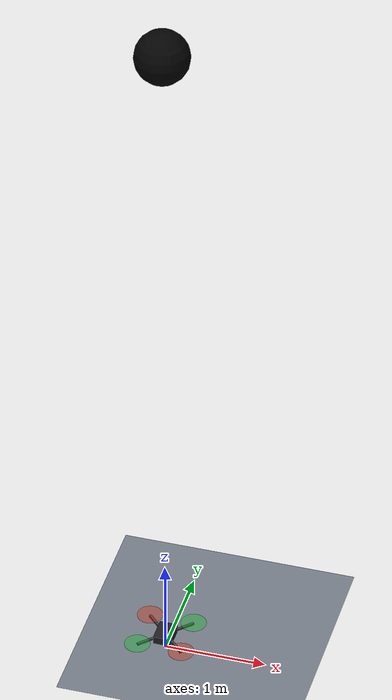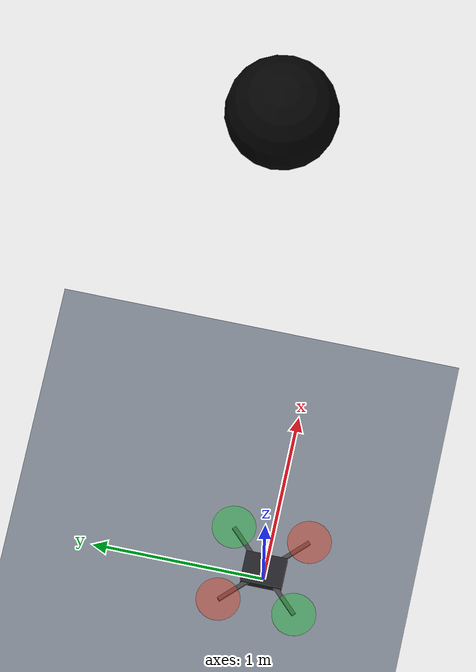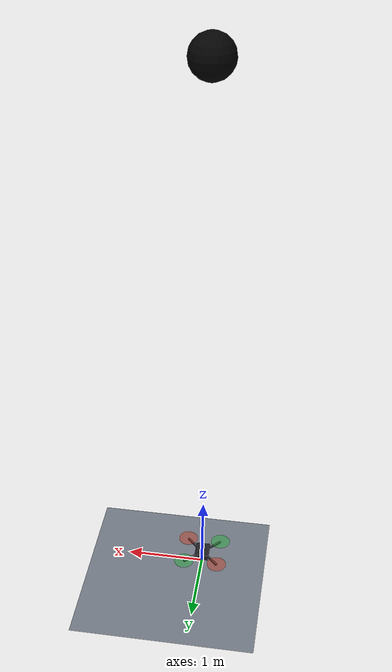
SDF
<?xml version="1.0"?>
<sdf version="1.10">
  <world name="png_betaflight_sitl">
    <physics name="fast" type="ignored">
      <!-- Match the measured ~3.16 kHz MICOAIR743V2 flight loop closely enough
           for official SITL's byte-at-a-time MSP parser to sustain 50 Hz RC. -->
      <max_step_size>0.0003125</max_step_size>
      <real_time_factor>1.0</real_time_factor>
    </physics>
    <gravity>0 0 -9.80665</gravity>
    <magnetic_field>2.1e-5 5.0e-6 -4.3e-5</magnetic_field>
    <atmosphere type="adiabatic"/>

    <plugin filename="gz-sim-physics-system" name="gz::sim::systems::Physics"/>
    <plugin filename="gz-sim-user-commands-system" name="gz::sim::systems::UserCommands"/>
    <plugin filename="gz-sim-scene-broadcaster-system" name="gz::sim::systems::SceneBroadcaster"/>
    <plugin filename="gz-sim-sensors-system" name="gz::sim::systems::Sensors"><render_engine>ogre2</render_engine></plugin>

    <light type="directional" name="sun"><cast_shadows>true</cast_shadows><pose>0 0 10 0 0 0</pose><diffuse>0.9 0.9 0.9 1</diffuse><specular>0.2 0.2 0.2 1</specular><direction>-0.3 0.2 -1</direction></light>
    <model name="ground_plane"><static>true</static><link name="link"><collision name="collision"><geometry><plane><normal>0 0 1</normal><size>100 100</size></plane></geometry></collision><visual name="visual"><geometry><plane><normal>0 0 1</normal><size>100 100</size></plane></geometry><material><ambient>0.35 0.38 0.42 1</ambient><diffuse>0.45 0.48 0.52 1</diffuse></material></visual></link></model>

    <include><uri>model://interceptor</uri></include>
    <include><uri>model://target_uav</uri></include>
  </world>
</sdf>

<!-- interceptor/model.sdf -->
<sdf version="1.10">
  <model name="interceptor">
    <pose>0 0 0.16 0 0 1.57079632679</pose>
    <self_collide>false</self_collide>
    <link name="base_link">
      <inertial>
        <mass>2.372</mass>
        <inertia>
          <ixx>0.070</ixx><iyy>0.070</iyy><izz>0.120</izz>
          <ixy>0</ixy><ixz>0</ixz><iyz>0</iyz>
        </inertia>
      </inertial>
      <collision name="body_collision">
        <geometry><box><size>0.24 0.18 0.08</size></box></geometry>
      </collision>
      <visual name="body_visual">
        <geometry><box><size>0.24 0.18 0.08</size></box></geometry>
        <material><ambient>0.05 0.05 0.06 1</ambient><diffuse>0.12 0.12 0.14 1</diffuse></material>
      </visual>
      <visual name="arm_ne_sw">
        <pose>0 0 0 0 0 0.785398</pose>
        <geometry><box><size>0.62 0.025 0.018</size></box></geometry>
        <material><ambient>0.15 0.15 0.16 1</ambient><diffuse>0.25 0.25 0.26 1</diffuse></material>
      </visual>
      <visual name="arm_nw_se">
        <pose>0 0 0 0 0 -0.785398</pose>
        <geometry><box><size>0.62 0.025 0.018</size></box></geometry>
        <material><ambient>0.15 0.15 0.16 1</ambient><diffuse>0.25 0.25 0.26 1</diffuse></material>
      </visual>
      <sensor name="upward_camera" type="camera">
        <pose>0 0 0.06 0 -1.57079632679 0</pose>
        <topic>/world/png_betaflight_sitl/model/interceptor/link/base_link/sensor/upward_camera/image</topic>
        <update_rate>30</update_rate>
        <camera>
          <horizontal_fov>1.08213</horizontal_fov>
          <image><width>640</width><height>512</height><format>R8G8B8</format></image>
          <clip><near>0.05</near><far>100</far></clip>
        </camera>
        <always_on>true</always_on>
        <visualize>false</visualize>
      </sensor>
    </link>

    <link name="motor_front_right"><pose relative_to="base_link">0.22 -0.22 0.01 0 0 0</pose><inertial><mass>0.01</mass><inertia><ixx>0.00002</ixx><iyy>0.00002</iyy><izz>0.00004</izz><ixy>0</ixy><ixz>0</ixz><iyz>0</iyz></inertia></inertial><visual name="rotor"><geometry><cylinder><radius>0.127</radius><length>0.004</length></cylinder></geometry><material><ambient>0.1 0.7 0.2 0.45</ambient><diffuse>0.1 0.7 0.2 0.45</diffuse></material></visual></link>
    <link name="motor_rear_left"><pose relative_to="base_link">-0.22 0.22 0.01 0 0 0</pose><inertial><mass>0.01</mass><inertia><ixx>0.00002</ixx><iyy>0.00002</iyy><izz>0.00004</izz><ixy>0</ixy><ixz>0</ixz><iyz>0</iyz></inertia></inertial><visual name="rotor"><geometry><cylinder><radius>0.127</radius><length>0.004</length></cylinder></geometry><material><ambient>0.1 0.7 0.2 0.45</ambient><diffuse>0.1 0.7 0.2 0.45</diffuse></material></visual></link>
    <link name="motor_front_left"><pose relative_to="base_link">0.22 0.22 0.01 0 0 0</pose><inertial><mass>0.01</mass><inertia><ixx>0.00002</ixx><iyy>0.00002</iyy><izz>0.00004</izz><ixy>0</ixy><ixz>0</ixz><iyz>0</iyz></inertia></inertial><visual name="rotor"><geometry><cylinder><radius>0.127</radius><length>0.004</length></cylinder></geometry><material><ambient>0.8 0.2 0.1 0.45</ambient><diffuse>0.8 0.2 0.1 0.45</diffuse></material></visual></link>
    <link name="motor_rear_right"><pose relative_to="base_link">-0.22 -0.22 0.01 0 0 0</pose><inertial><mass>0.01</mass><inertia><ixx>0.00002</ixx><iyy>0.00002</iyy><izz>0.00004</izz><ixy>0</ixy><ixz>0</ixz><iyz>0</iyz></inertia></inertial><visual name="rotor"><geometry><cylinder><radius>0.127</radius><length>0.004</length></cylinder></geometry><material><ambient>0.8 0.2 0.1 0.45</ambient><diffuse>0.8 0.2 0.1 0.45</diffuse></material></visual></link>

    <joint name="motor_front_right_joint" type="revolute"><parent>base_link</parent><child>motor_front_right</child><axis><xyz>0 0 1</xyz><limit><lower>-1e16</lower><upper>1e16</upper></limit></axis></joint>
    <joint name="motor_rear_left_joint" type="revolute"><parent>base_link</parent><child>motor_rear_left</child><axis><xyz>0 0 1</xyz><limit><lower>-1e16</lower><upper>1e16</upper></limit></axis></joint>
    <joint name="motor_front_left_joint" type="revolute"><parent>base_link</parent><child>motor_front_left</child><axis><xyz>0 0 1</xyz><limit><lower>-1e16</lower><upper>1e16</upper></limit></axis></joint>
    <joint name="motor_rear_right_joint" type="revolute"><parent>base_link</parent><child>motor_rear_right</child><axis><xyz>0 0 1</xyz><limit><lower>-1e16</lower><upper>1e16</upper></limit></axis></joint>

    <!-- Official SITL publishes normalized motors as M2,M3,M4,M1. -->
    <plugin filename="gz-sim-multicopter-motor-model-system" name="gz::sim::systems::MulticopterMotorModel"><robotNamespace>interceptor</robotNamespace><jointName>motor_front_right_joint</jointName><linkName>motor_front_right</linkName><turningDirection>cw</turningDirection><timeConstantUp>0.025</timeConstantUp><timeConstantDown>0.04</timeConstantDown><maxRotVelocity>2200</maxRotVelocity><motorConstant>1.62e-05</motorConstant><momentConstant>0.016</momentConstant><commandSubTopic>command/motor_speed</commandSubTopic><actuator_number>0</actuator_number><rotorDragCoefficient>8.0e-05</rotorDragCoefficient><rollingMomentCoefficient>1e-06</rollingMomentCoefficient><motorSpeedPubTopic>motor_speed/0</motorSpeedPubTopic><rotorVelocitySlowdownSim>10</rotorVelocitySlowdownSim><motorType>velocity</motorType></plugin>
    <plugin filename="gz-sim-multicopter-motor-model-system" name="gz::sim::systems::MulticopterMotorModel"><robotNamespace>interceptor</robotNamespace><jointName>motor_rear_left_joint</jointName><linkName>motor_rear_left</linkName><turningDirection>cw</turningDirection><timeConstantUp>0.025</timeConstantUp><timeConstantDown>0.04</timeConstantDown><maxRotVelocity>2200</maxRotVelocity><motorConstant>1.62e-05</motorConstant><momentConstant>0.016</momentConstant><commandSubTopic>command/motor_speed</commandSubTopic><actuator_number>1</actuator_number><rotorDragCoefficient>8.0e-05</rotorDragCoefficient><rollingMomentCoefficient>1e-06</rollingMomentCoefficient><motorSpeedPubTopic>motor_speed/1</motorSpeedPubTopic><rotorVelocitySlowdownSim>10</rotorVelocitySlowdownSim><motorType>velocity</motorType></plugin>
    <plugin filename="gz-sim-multicopter-motor-model-system" name="gz::sim::systems::MulticopterMotorModel"><robotNamespace>interceptor</robotNamespace><jointName>motor_front_left_joint</jointName><linkName>motor_front_left</linkName><turningDirection>ccw</turningDirection><timeConstantUp>0.025</timeConstantUp><timeConstantDown>0.04</timeConstantDown><maxRotVelocity>2200</maxRotVelocity><motorConstant>1.62e-05</motorConstant><momentConstant>0.016</momentConstant><commandSubTopic>command/motor_speed</commandSubTopic><actuator_number>2</actuator_number><rotorDragCoefficient>8.0e-05</rotorDragCoefficient><rollingMomentCoefficient>1e-06</rollingMomentCoefficient><motorSpeedPubTopic>motor_speed/2</motorSpeedPubTopic><rotorVelocitySlowdownSim>10</rotorVelocitySlowdownSim><motorType>velocity</motorType></plugin>
    <plugin filename="gz-sim-multicopter-motor-model-system" name="gz::sim::systems::MulticopterMotorModel"><robotNamespace>interceptor</robotNamespace><jointName>motor_rear_right_joint</jointName><linkName>motor_rear_right</linkName><turningDirection>ccw</turningDirection><timeConstantUp>0.025</timeConstantUp><timeConstantDown>0.04</timeConstantDown><maxRotVelocity>2200</maxRotVelocity><motorConstant>1.62e-05</motorConstant><momentConstant>0.016</momentConstant><commandSubTopic>command/motor_speed</commandSubTopic><actuator_number>3</actuator_number><rotorDragCoefficient>8.0e-05</rotorDragCoefficient><rollingMomentCoefficient>1e-06</rollingMomentCoefficient><motorSpeedPubTopic>motor_speed/3</motorSpeedPubTopic><rotorVelocitySlowdownSim>10</rotorVelocitySlowdownSim><motorType>velocity</motorType></plugin>

    <plugin filename="libPngBetaflightSilBridge.so" name="png::sitl::BetaflightSilBridge">
      <motorCommandTopic>/interceptor/command/motor_speed</motorCommandTopic>
      <maxRotVelocity>2200</maxRotVelocity>
      <originLatitudeDeg>22.7991667</originLatitudeDeg>
      <originLongitudeDeg>113.86</originLongitudeDeg>
      <originAltitudeM>20</originAltitudeM>
    </plugin>
    <plugin filename="gz-sim-pose-publisher-system" name="gz::sim::systems::PosePublisher">
      <publish_link_pose>false</publish_link_pose>
      <publish_model_pose>true</publish_model_pose>
      <publish_collision_pose>false</publish_collision_pose>
      <publish_visual_pose>false</publish_visual_pose>
      <publish_sensor_pose>false</publish_sensor_pose>
      <publish_nested_model_pose>false</publish_nested_model_pose>
      <update_frequency>50</update_frequency>
      <use_pose_vector_msg>true</use_pose_vector_msg>
    </plugin>
  </model>
</sdf>

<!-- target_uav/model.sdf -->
<sdf version="1.10">
  <model name="target_uav">
    <pose>0 0 7 0 0 0</pose>
    <link name="target_link">
      <inertial><mass>1.0</mass><inertia><ixx>0.03</ixx><iyy>0.03</iyy><izz>0.05</izz><ixy>0</ixy><ixz>0</ixz><iyz>0</iyz></inertia></inertial>
      <gravity>false</gravity>
      <collision name="body_collision"><geometry><box><size>0.30 0.18 0.08</size></box></geometry></collision>
      <!-- Deterministic rendered-SIL detector stimulus only. It exercises the
           pixel detector path but is not detector-accuracy or target-size evidence. -->
      <visual name="single_target_detector_stimulus">
        <pose>0 0 -0.025 0 0 0</pose>
        <geometry><sphere><radius>0.26</radius></sphere></geometry>
        <material><diffuse>0.01 0.01 0.01 1</diffuse><specular>0 0 0 1</specular></material>
      </visual>
    </link>
    <plugin filename="libPngBetaflightSilBridge.so" name="png::sitl::DeterministicTargetMotion">
      <eastAmplitudeM>1.2</eastAmplitudeM>
      <northAmplitudeM>0.6</northAmplitudeM>
      <periodS>8</periodS>
      <verticalApproachStartS>7.5</verticalApproachStartS>
      <verticalApproachSpeedMps>5.0</verticalApproachSpeedMps>
      <maximumVerticalApproachM>5.6</maximumVerticalApproachM>
      <horizontalApproachDecayS>1.5</horizontalApproachDecayS>
      <cameraAlignmentStartS>5.8</cameraAlignmentStartS>
      <cameraAlignmentBlendS>0.5</cameraAlignmentBlendS>
      <interceptorModelName>interceptor</interceptorModelName>
      <cameraOffsetBodyFluM>0.06</cameraOffsetBodyFluM>
      <interceptorInitialHeightM>0.16</interceptorInitialHeightM>
    </plugin>
    <plugin filename="gz-sim-pose-publisher-system" name="gz::sim::systems::PosePublisher">
      <publish_link_pose>false</publish_link_pose>
      <publish_model_pose>true</publish_model_pose>
      <publish_collision_pose>false</publish_collision_pose>
      <publish_visual_pose>false</publish_visual_pose>
      <publish_sensor_pose>false</publish_sensor_pose>
      <publish_nested_model_pose>false</publish_nested_model_pose>
      <update_frequency>50</update_frequency>
      <use_pose_vector_msg>true</use_pose_vector_msg>
    </plugin>
  </model>
</sdf>
